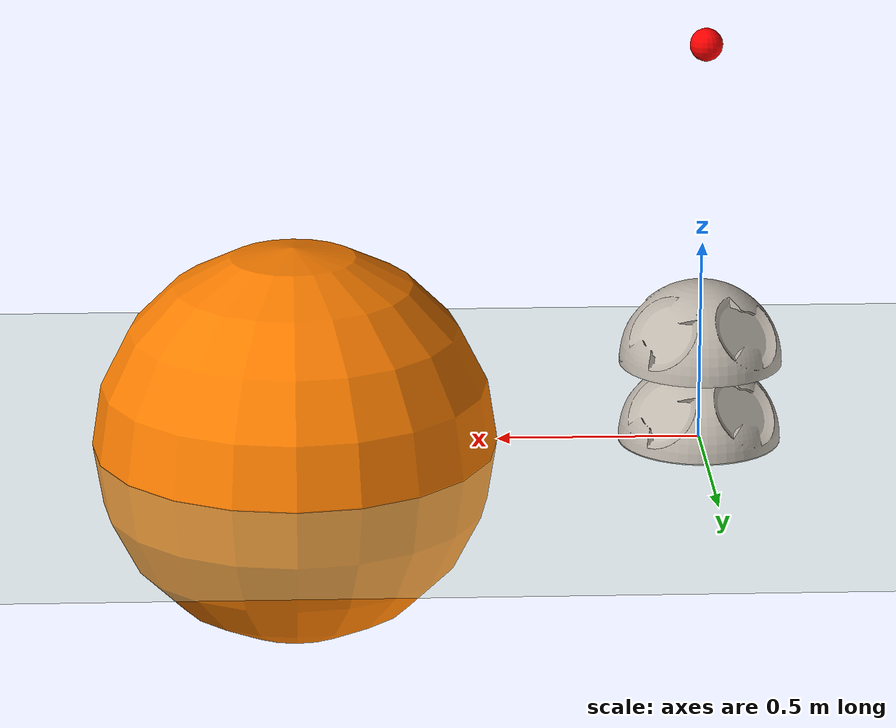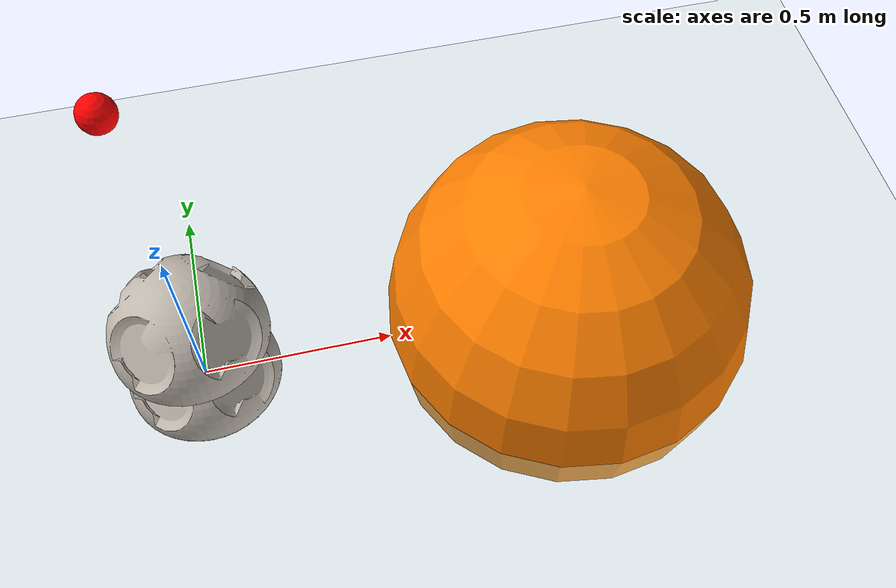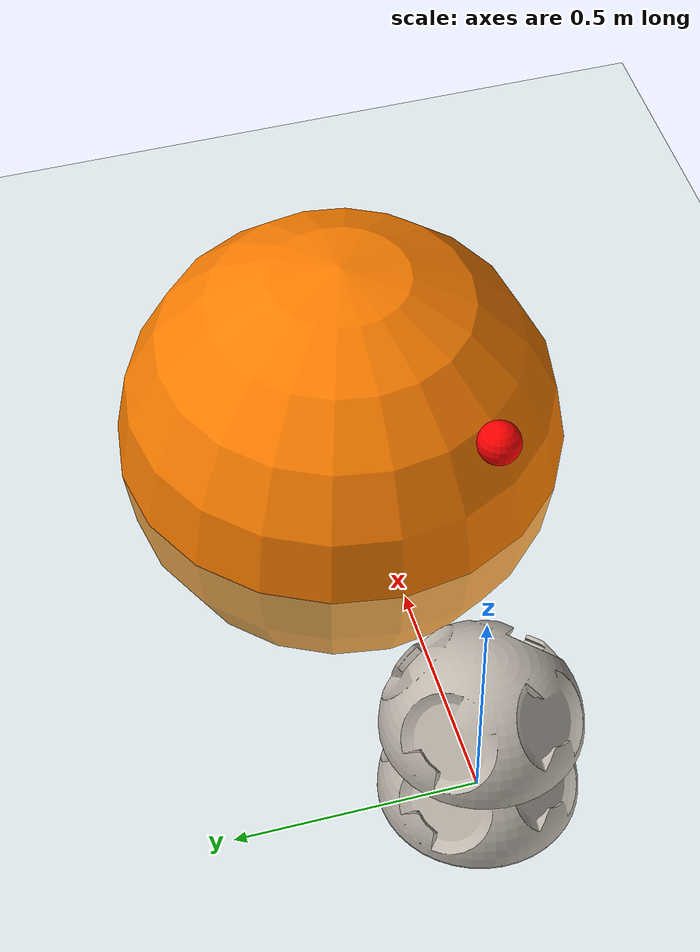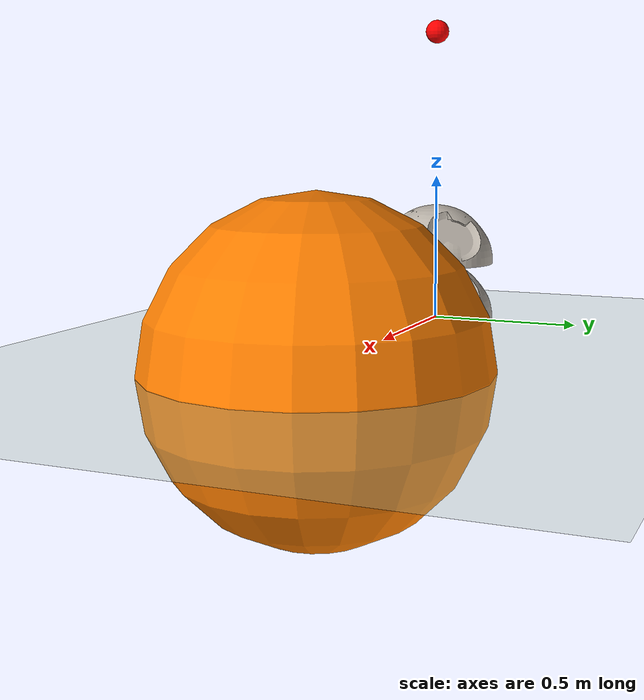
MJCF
<mujoco model="cellrobot(v1.0)">
  <compiler coordinate="local" angle="radian" meshdir="meshes/" texturedir="textures" strippath="false" />
   <option gravity="0 0 -9.81" timestep="0.01"/>

  <size njmax="795" nconmax="250" nstack="631875" />

  <asset>
      <!--Meshes-->
      <mesh name="cell_half_gear" file="cell/cell_half_gear.STL" scale="5 5 5"/>
      <mesh name="cell_half_motor" file="cell/cell_half_motor.STL" scale="5 5 5"/>

      <!--Textures-->
      <texture name="floor_tex"   type="2d"  builtin="checker" rgb1=".2 .3 .4" rgb2=".1 .2 .3" width="100" height="100" />
      <texture builtin="checker" height="100" name="texplane" rgb1="0 0 0" rgb2="0.8 0.8 0.8" type="2d" width="100"/>

      <texture name="texture:object" file="block.png" type="cube" gridsize="3 4" gridlayout=".U..LFRB.D.."/>

      <!--Materials-->
       <material name='floor_mat'    texture="floor_tex"  shininess="0.8" texrepeat="10 10" specular="0.7"  reflectance="0.5" />
      <material name="MatPlane" reflectance="0.5" shininess="1" specular="1" texrepeat="60 60" texture="texplane"/>

      <material name="material:object" texture="texture:object" specular="1" shininess="0" reflectance="0"/>
  </asset>

   <visual>
        <map fogstart="1.5" fogend="3"/>
        <quality shadowsize="2048"/>
   </visual>

   <default>
		<geom margin="0.001"/>
        <joint limited="true" damping="0.2" armature=".01"/>
		<default class="cell">
			<geom type="mesh" /> <!-- rgba="0.8 0.6 .4 1" -->
		</default>
   </default>

    <!--Contacts-->
    <contact>

    </contact>

  <worldbody>
    <!--Lighting parameters-->
    <light cutoff="100" diffuse="1 1 1" dir="-0 0 -1.3" directional="true" exponent="1" pos="0 0 1.3" specular=".1 .1 .1"/>
    <!--Camera parameters-->
    <camera name="main1" mode="fixed" target="torso" pos="2 2 2.7" axisangle="2 2 -2 1"/>
    <!--Floor Property-->
    <geom conaffinity="1" condim="3" material="MatPlane" name="floor" pos="0 0 0" rgba="0.8 0.9 0.8 1" size="40 40 40" type="plane"/>

    <body name="torso" pos="0  0  0">
        <inertial pos="0 0 0"   mass="4"  diaginertia="0.0072 0.00443333 0.00443333" />
        <geom  class="cell"  mesh="cell_half_gear"  pos="0 0 0"  material="material:object"  />
        <geom  class="cell"  mesh="cell_half_gear"  pos="0 0 0.2"  material="material:object"  />
        <joint name="shoulder_pan_joint"   pos="0 0 0" axis="0 0 1" limited="true" range="-3.14159 3.14159" />
   </body>

  <site name="target1" pos="1 0 0" size="0.5 "  rgba="1 0.5 0 1" type="sphere"></site>

  <site name="target2" pos="0 0 1" size="0.04 "  rgba="1 0 0 1" type="sphere"></site>
  </worldbody>

</mujoco>
